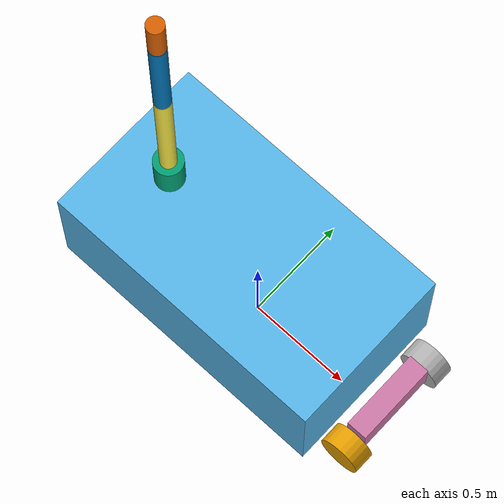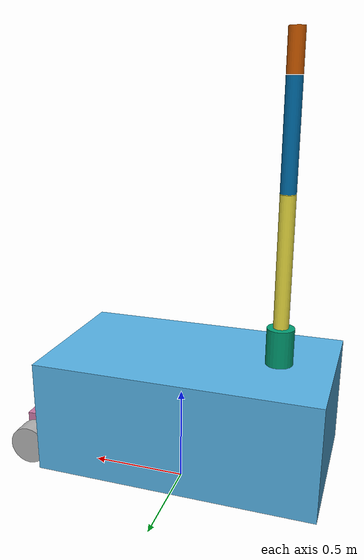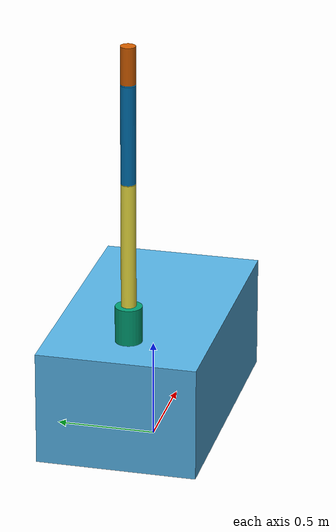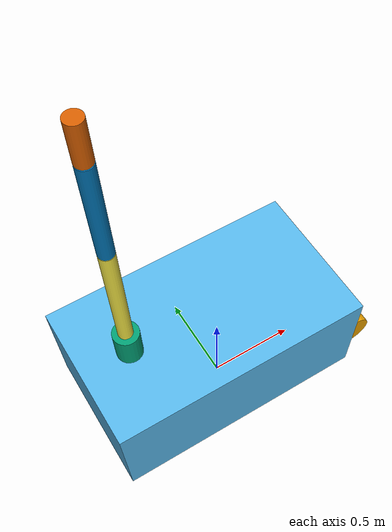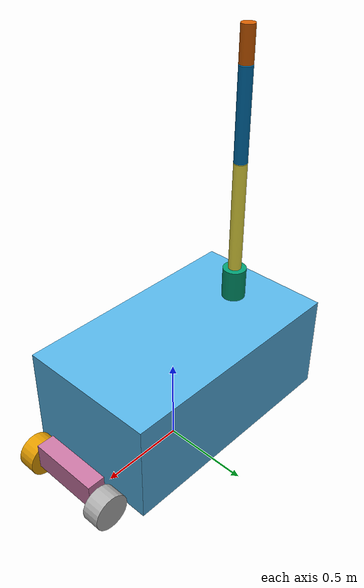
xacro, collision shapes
<?xml version="1.0" ?>

<robot name="ROBOT_NAME" xmlns:xacro="http://ros.org/wiki/xacro">
  <!-- Optional: Disable physics by setting the model as static -->

  <xacro:include filename="$(find my_plastikkbaat)/urdf/common_macros.xacro" />
  <xacro:include filename="$(find my_plastikkbaat)/urdf/mobile_manipulator.xacro" />

  <!-- Define a dummy link -->
  <link name="mobile_base_dummy"/>

  <joint name="mobile_base_joint" type="fixed">
    <parent link="mobile_base_dummy"/>
    <child link="mobile_base_link"/>
    <origin xyz="0 0 0.15" rpy="0 0 0"/>
  </joint>

  <link name="mobile_base_link">
      <visual>
          <origin xyz="0 0 0" rpy="0 0 0"/>
           <geometry>
           <mesh filename="$(find my_plastikkbaat)/meshes/306baatopdatert.stl" />

          </geometry>
      </visual>
      <collision>
          <origin xyz="-0.07 0 0.2975" rpy="0 0 0"/>
          <geometry>
              <box size="1.4 0.8 0.575"/>
          </geometry>
      </collision>
      <xacro:inertial_box length="1.4" width="0.8" height="0.575" density="600">
      <origin xyz="-0.07 0 0.2975" rpy="0 0 0"/>
      </xacro:inertial_box>

  </link>

  <joint type="revolute" name="arm_base_joint">
    <origin xyz="-0.5 0.0 0.57" rpy="0.0 0.0 0.0"/>
    <child link="arm_base_link"/>
    <parent link="mobile_base_link"/>
    <axis xyz="0 0 1" rpy="0 0 0"/>
    <limit effort="100" velocity="100" lower="-${pi}" upper="${pi}"/>
    <dynamics damping="0.7" friction="1.0"/>
</joint>

  <link name="arm_base_link">
      <visual>
          <origin xyz="0 0 0" rpy="0 0 0"/>
           <geometry>
           <mesh filename="$(find my_plastikkbaat)/meshes/arm_base_mesh.stl" />

          </geometry>
      </visual>
      <collision>
          <origin xyz="0 0 0.1" rpy="0 0 0"/>
          <geometry>
              <cylinder length="0.2" radius="${0.135/2}" />

          </geometry>
      </collision>
      <xacro:inertial_cylinder radius="${0.135/2}" length="0.2" density="600">
       <origin xyz="0 0 0.1" rpy="0 0 0"/>
      </xacro:inertial_cylinder>

  </link>

  <joint type="revolute" name="link_1_armbaat_joint">
    <origin xyz="0.0 0.0 0.2" rpy="-${pi/2} 0.0 0.0"/>
    <child link="link_1_armbaat_link"/>
    <parent link="arm_base_link"/>
    <axis xyz="0 0 1" rpy="0 0 0"/>
    <limit effort="100" velocity="100" lower="-${pi}" upper="${pi}"/>
    <dynamics damping="0.7" friction="1.0"/>
</joint>

  <link name="link_1_armbaat_link">
      <visual>
          <origin xyz="0 -0.32 0" rpy="${pi/2} 0 0"/>
           <geometry>
           <mesh filename="$(find my_plastikkbaat)/meshes/link_1_armbaat.stl" />

          </geometry>
      </visual>
      <collision>
          <origin xyz="0 -0.32 0" rpy="${pi/2} 0 0"/>
          <geometry>
              <cylinder length="0.635" radius="${0.075/2}" />

          </geometry>
      </collision>
      <xacro:inertial_cylinder radius="${0.075/2}" length="0.635" density="600">
       <origin xyz="0 -0.32 0.0" rpy="${pi/2} 0 0"/>
      </xacro:inertial_cylinder>

  </link>

    <joint type="revolute" name="link_2_armbaat_joint">
     <origin xyz="0.0 -0.64 0.0" rpy="0.0 0.0 0.0"/>
     <child link="link_2_armbaat_link"/>
     <parent link="link_1_armbaat_link"/>
     <axis xyz="0 0 1" rpy="0 0 0"/>
     <limit effort="100" velocity="100" lower="-${pi}" upper="${pi}"/>
     <dynamics damping="0.7" friction="1.0"/>
    </joint>

  <link name="link_2_armbaat_link">
      <visual>
          <origin xyz="0 -0.25 0" rpy=" ${pi/2} 0 0"/>
           <geometry>
           <mesh filename="$(find my_plastikkbaat)/meshes/link_2_armbaat.stl" />

          </geometry>
      </visual>
      <collision>
          <origin xyz="0 -0.25 0" rpy=" ${pi/2} 0 0"/>
          <geometry>
              <cylinder length="0.5" radius="${0.075/2}" />

          </geometry>
      </collision>
      <xacro:inertial_cylinder radius="${0.075/2}" length="0.5" density="600">
       <origin xyz="0 -0.25 0" rpy="${pi/2} 0 0"/>
      </xacro:inertial_cylinder>

  </link>

   <joint type="revolute" name="link_3_armbaat_joint">
     <origin xyz="0.0 -0.505 0.0" rpy="0.0 0.0 0.0"/>
     <child link="link_3_armbaat_link"/>
     <parent link="link_2_armbaat_link"/>
     <axis xyz="0 0 1" rpy="0 0 0"/>
     <limit effort="100" velocity="100" lower="-${pi}" upper="${pi}"/>
     <dynamics damping="0.7" friction="1.0"/>
    </joint>

  <link name="link_3_armbaat_link">
      <visual>
          <origin xyz="0 -0.19 0" rpy="${pi/2} 0 0"/>
           <geometry>
           <mesh filename="$(find my_plastikkbaat)/meshes/link_3_armbaat.stl" />

          </geometry>
      </visual>
      <collision>
          <origin xyz="0 -0.095 0" rpy="${pi/2} 0 0"/>
          <geometry>
              <cylinder length="0.19" radius="${0.075/2}" />

          </geometry>
      </collision>
      <xacro:inertial_cylinder radius="${0.075/2}" length="0.19" density="600">
       <origin xyz="0 -0.095 0" rpy="${pi/2} 0 0"/>
      </xacro:inertial_cylinder>

  </link>

   <joint name="thruster_joint" type="fixed">
     <parent link="mobile_base_link"/>
      <child link="thruster_base" />
      <origin xyz="0.75 0 0.12" rpy="0 0 0"/>
    </joint>

    <link name="thruster_base">
      <visual>
          <origin xyz="0 0 0" rpy="0 0 0"/>
           <geometry>
           <box size="0.1 0.4 0.12"/>
          </geometry>
      </visual>
      <collision>
          <origin xyz="0 0 0" rpy="0 0 0"/>
          <geometry>
              <box size="0.1 0.4 0.15"/>
          </geometry>
      </collision>
      <xacro:inertial_box length="0.1" width="0.4" height="0.12" density="600">
      <origin xyz="0 0 0" rpy="0 0 0"/>
      </xacro:inertial_box>
    </link>

    <joint type="continuous" name="right_wheel_joint">
      <origin xyz="0.0 0.255 -0.06" rpy="-${pi/2} 0.0 0.0"/>
      <child link="right_wheel_link"/>
      <parent link="thruster_base"/>
      <axis xyz="0 0 1" rpy="0 0 0"/>
      <limit effort="100" velocity="100"/>
      <dynamics damping="0.7" friction="1.0"/>
    </joint>

    <link name="right_wheel_link">
      <visual>
          <origin xyz="0 0 0" rpy="0 0 0"/>
           <geometry>
           <mesh filename="$(find my_plastikkbaat)/meshes/wheel_mesh.stl" />

          </geometry>
      </visual>
      <collision>
          <origin xyz="0 0 0" rpy="0 0 0"/>
          <geometry>
              <cylinder length="0.1" radius="0.1" />

          </geometry>
      </collision>
      <xacro:inertial_cylinder radius="0.1" length="0.1" density="600">
       <origin xyz="0 0 0" rpy="0 0 0"/>
      </xacro:inertial_cylinder>

  </link>

  <joint type="continuous" name="left_wheel_joint">
      <origin xyz="0.0 -0.255 -0.06" rpy="-${pi/2} 0.0 0.0"/>
      <child link="left_wheel_link"/>
      <parent link="thruster_base"/>
      <axis xyz="0 0 1" rpy="0 0 0"/>
      <limit effort="100" velocity="100"/>
      <dynamics damping="0.7" friction="1.0"/>
    </joint>

    <link name="left_wheel_link">
      <visual>
          <origin xyz="0 0 0" rpy="0 0 0"/>
           <geometry>
           <mesh filename="$(find my_plastikkbaat)/meshes/wheel_mesh.stl" />

          </geometry>
      </visual>
      <collision>
          <origin xyz="0 0 0" rpy="0 0 0"/>
          <geometry>
              <cylinder length="0.1" radius="0.1" />

          </geometry>
      </collision>
      <xacro:inertial_cylinder radius="0.1" length="0.1" density="600">
       <origin xyz="0 0 0" rpy="0 0 0"/>
      </xacro:inertial_cylinder>

  </link>

  <joint name="support_boks_joint" type="fixed">
     <parent link="mobile_base_link"/>
      <child link="support_boks_link" />
      <origin xyz="-0.5 0 0" rpy="0 0 0"/>
    </joint>

    <link name="support_boks_link">
      <visual>
          <origin xyz="0 0 0" rpy="0 0 0"/>
           <geometry>
           <box size="0.0 0.0 0.0"/>
          </geometry>
      </visual>
      <collision>
          <origin xyz="0 0 0" rpy="0 0 0"/>
          <geometry>
              <box size="0.1 0.4 0.04"/>
          </geometry>
      </collision>
      <inertial>
            <mass value="0.0"/> <!-- Ingen masse for å unngå vekten -->
            <inertia ixx="0.0" ixy="0.0" ixz="0.0" iyy="0.0" iyz="0.0" izz="0.0"/>
      </inertial>

    </link>

</robot>
